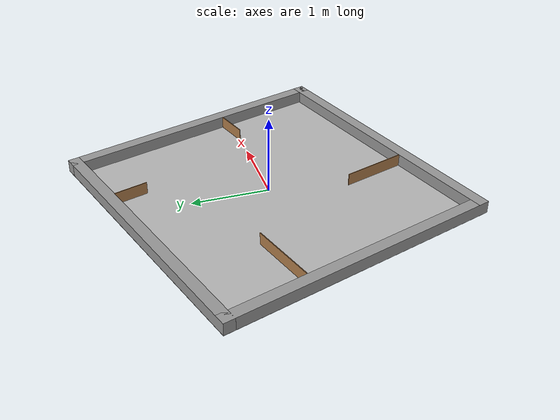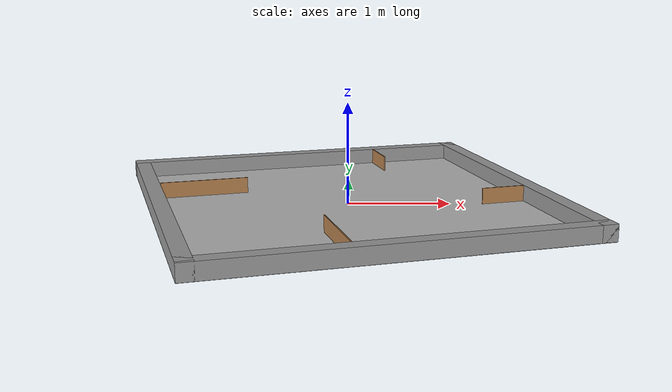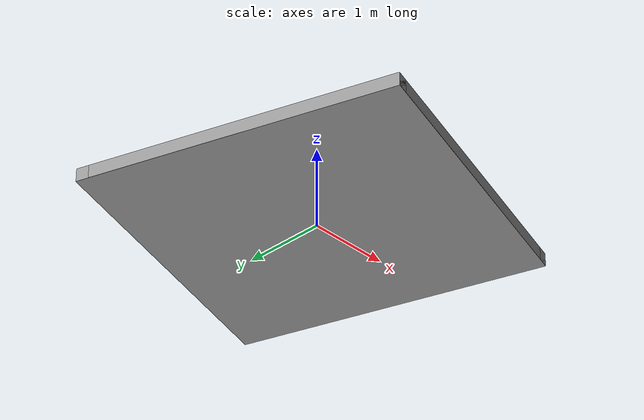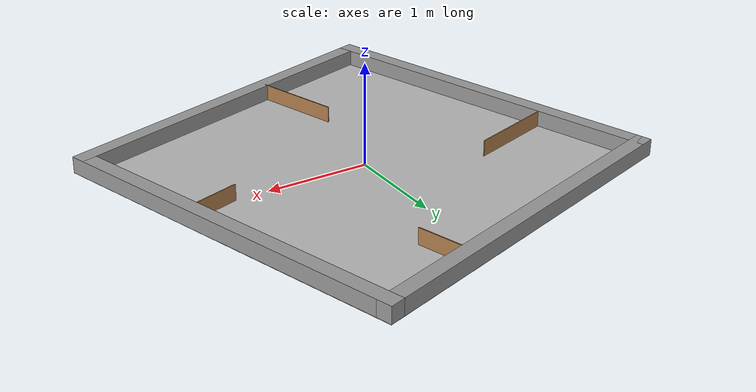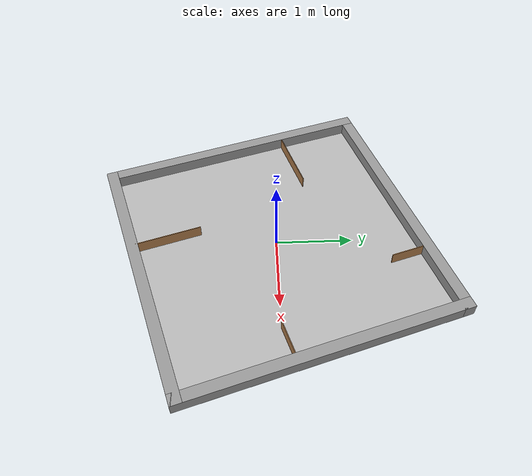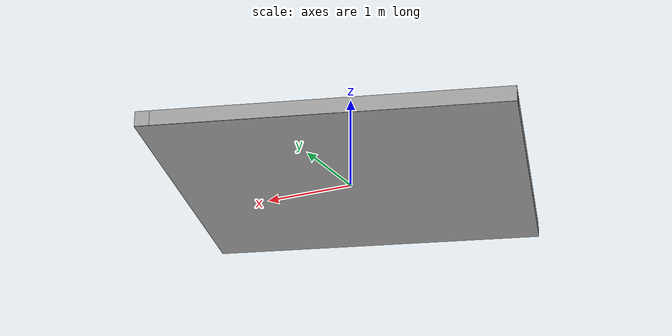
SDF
<?xml version='1.0'?>
<sdf version='1.7'>
  <model name='arena'>
  <static>true</static>
    <link name="floor">
      <collision name="collision">
        <geometry>
          <plane>
            <normal>0 0 1</normal>
            <size>3.75 3.75</size>
          </plane>
        </geometry>
        <surface>
          <friction>
            <ode>
              <mu>100</mu>
              <mu2>50</mu2>
            </ode>
          </friction>
        </surface>
      </collision>
      <visual name="visual">
        <cast_shadows>false</cast_shadows>
        <geometry>
          <plane>
            <normal>0 0 1</normal>
            <size>3.75 3.75</size>
          </plane>
        </geometry>
        <material>
          <script>
            <uri>model://arena/materials/scripts</uri>
            <uri>model://arena/materials/textures</uri>
            <name>FloorPlan/Image</name>
          </script>
        </material>
      </visual>
    </link>
    <pose>-0.02 -0.014 0 0 -0 0.3</pose>
    <link name='Wall_21'>
      <collision name='Wall_21_Collision'>
        <geometry>
          <box>
            <size>3.75 0.15 0.16</size>
          </box>
        </geometry>
        <pose>0 0 0.08 0 -0 0</pose>
      </collision>
      <visual name='Wall_21_Visual'>
        <pose>0 0 0.08 0 -0 0</pose>
        <geometry>
          <box>
            <size>3.75 0.15 0.16</size>
          </box>
        </geometry>
        <material>
          <script>
            <uri>file://media/materials/scripts/gazebo.material</uri>
            <name>Gazebo/Grey</name>
          </script>
          <ambient>1 1 1 1</ambient>
        </material>
        <meta>
          <layer>0</layer>
        </meta>
      </visual>
      <pose>-1.8 0 0 0 -0 -1.5708</pose>
    </link>
    <link name='Wall_22'>
      <collision name='Wall_22_Collision'>
        <geometry>
          <box>
            <size>3.75 0.15 0.16</size>
          </box>
        </geometry>
        <pose>0 0 0.08 0 -0 0</pose>
      </collision>
      <visual name='Wall_22_Visual'>
        <pose>0 0 0.08 0 -0 0</pose>
        <geometry>
          <box>
            <size>3.75 0.15 0.16</size>
          </box>
        </geometry>
        <material>
          <script>
            <uri>file://media/materials/scripts/gazebo.material</uri>
            <name>Gazebo/Grey</name>
          </script>
          <ambient>1 1 1 1</ambient>
        </material>
        <meta>
          <layer>0</layer>
        </meta>
      </visual>
      <pose>0 -1.8 0 0 -0 0</pose>
    </link>
    <link name='Wall_23'>
      <collision name='Wall_23_Collision'>
        <geometry>
          <box>
            <size>3.75 0.15 0.16</size>
          </box>
        </geometry>
        <pose>0 0 0.08 0 -0 0</pose>
      </collision>
      <visual name='Wall_23_Visual'>
        <pose>0 0 0.08 0 -0 0</pose>
        <geometry>
          <box>
            <size>3.75 0.15 0.16</size>
          </box>
        </geometry>
        <material>
          <script>
            <uri>file://media/materials/scripts/gazebo.material</uri>
            <name>Gazebo/Grey</name>
          </script>
          <ambient>1 1 1 1</ambient>
        </material>
        <meta>
          <layer>0</layer>
        </meta>
      </visual>
      <pose>1.8 0 0 0 -0 1.5708</pose>
    </link>
    <link name='Wall_24'>
      <collision name='Wall_24_Collision'>
        <geometry>
          <box>
            <size>3.75 0.15 0.16</size>
          </box>
        </geometry>
        <pose>0 0 0.08 0 -0 0</pose>
      </collision>
      <visual name='Wall_24_Visual'>
        <pose>0 0 0.08 0 -0 0</pose>
        <geometry>
          <box>
            <size>3.75 0.15 0.16</size>
          </box>
        </geometry>
        <material>
          <script>
            <uri>file://media/materials/scripts/gazebo.material</uri>
            <name>Gazebo/Grey</name>
          </script>
          <ambient>1 1 1 1</ambient>
        </material>
        <meta>
          <layer>0</layer>
        </meta>
      </visual>
      <pose>0 1.8 0 0 -0 3.14159</pose>
    </link>
    <link name='Wall_26'>
      <collision name='Wall_26_Collision'>
        <geometry>
          <box>
            <size>0.88 0.01 0.16</size>
          </box>
        </geometry>
        <pose>0 0 0.08 0 -0 0</pose>
      </collision>
      <visual name='Wall_26_Visual'>
        <pose>0 0 0.08 0 -0 0</pose>
        <geometry>
          <box>
            <size>0.88 0.01 0.16</size>
          </box>
        </geometry>
        <material>
          <script>
            <uri>file://media/materials/scripts/gazebo.material</uri>
            <name>Gazebo/Wood</name>
          </script>
          <ambient>1 1 1 1</ambient>
        </material>
        <meta>
          <layer>0</layer>
        </meta>
      </visual>
      <pose>-1.275 0.724 0 0 -0 0</pose>
    </link>
    <link name='Wall_28'>
      <collision name='Wall_28_Collision'>
        <geometry>
          <box>
            <size>0.88 0.01 0.16</size>
          </box>
        </geometry>
        <pose>0 0 0.08 0 -0 0</pose>
      </collision>
      <visual name='Wall_28_Visual'>
        <pose>0 0 0.08 0 -0 0</pose>
        <geometry>
          <box>
            <size>0.88 0.01 0.16</size>
          </box>
        </geometry>
        <material>
          <script>
            <uri>file://media/materials/scripts/gazebo.material</uri>
            <name>Gazebo/Wood</name>
          </script>
          <ambient>1 1 1 1</ambient>
        </material>
        <meta>
          <layer>0</layer>
        </meta>
      </visual>
      <pose>-0.453 -1.324 0 0 -0 1.5708</pose>
    </link>
    <link name='Wall_30'>
      <collision name='Wall_30_Collision'>
        <geometry>
          <box>
            <size>0.44 0.01 0.16</size>
          </box>
        </geometry>
        <pose>0 0 0.08 0 -0 0</pose>
      </collision>
      <visual name='Wall_30_Visual'>
        <pose>0 0 0.08 0 -0 0</pose>
        <geometry>
          <box>
            <size>0.44 0.01 0.16</size>
          </box>
        </geometry>
        <material>
          <script>
            <uri>file://media/materials/scripts/gazebo.material</uri>
            <name>Gazebo/Wood</name>
          </script>
          <ambient>1 1 1 1</ambient>
        </material>
        <meta>
          <layer>0</layer>
        </meta>
      </visual>
      <pose>0.836 1.509 0 0 -0 -1.5708</pose>
    </link>
    <link name='Wall_32'>
      <collision name='Wall_32_Collision'>
        <geometry>
          <box>
            <size>0.44 0.01 0.16</size>
          </box>
        </geometry>
        <pose>0 0 0.08 0 -0 0</pose>
      </collision>
      <visual name='Wall_32_Visual'>
        <pose>0 0 0.08 0 -0 0</pose>
        <geometry>
          <box>
            <size>0.44 0.01 0.16</size>
          </box>
        </geometry>
        <material>
          <script>
            <uri>file://media/materials/scripts/gazebo.material</uri>
            <name>Gazebo/Wood</name>
          </script>
          <ambient>1 1 1 1</ambient>
        </material>
        <meta>
          <layer>0</layer>
        </meta>
      </visual>
      <pose>1.503 -0.382 0 0 -0 3.14159</pose>
    </link>
    <static>1</static>
  </model>
</sdf>
